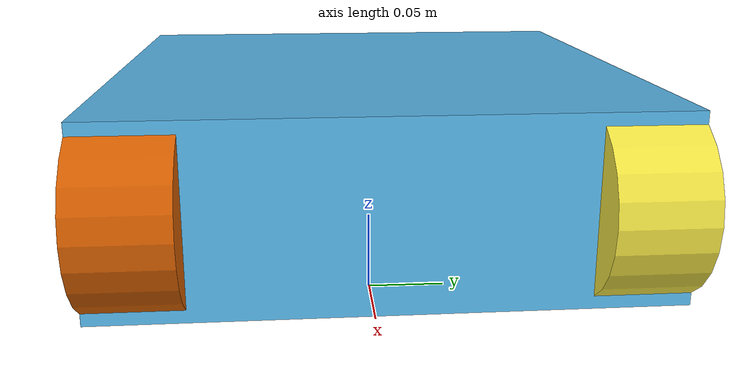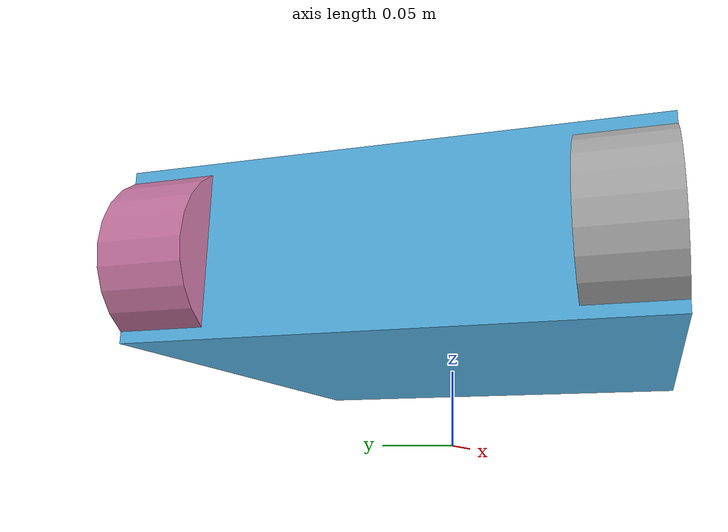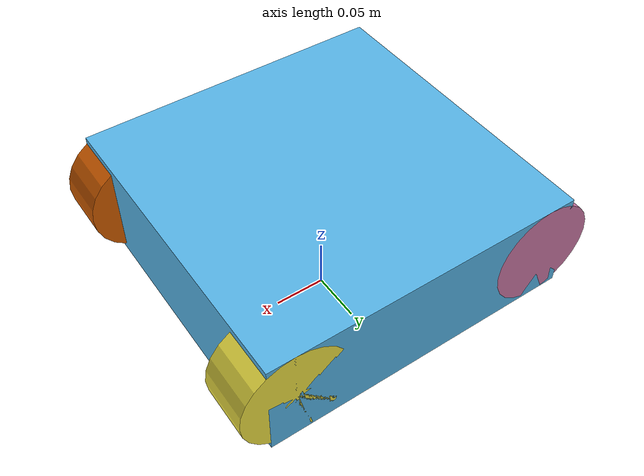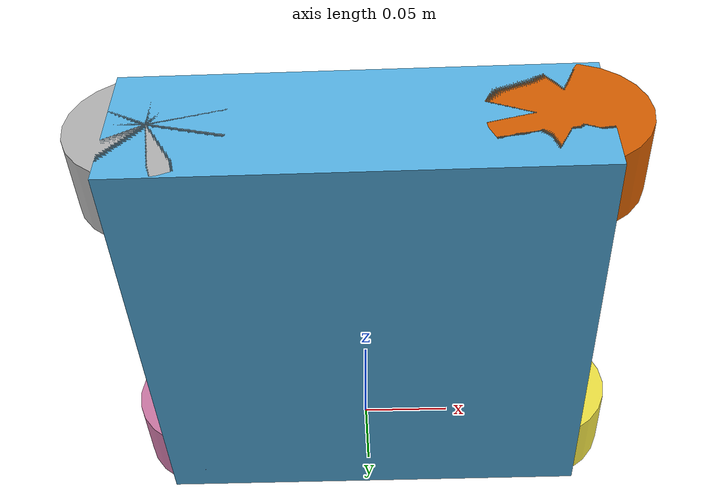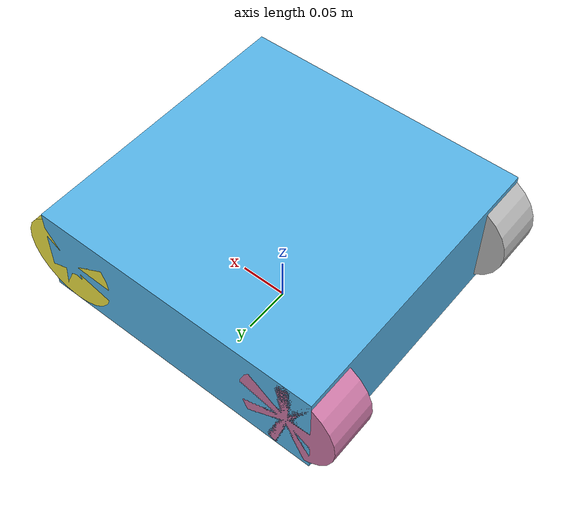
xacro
<?xml version="1.0"?>
<robot xmlns:xacro="http://www.ros.org/wiki/xacro" name="car_robot">

    <!-- ======================= PROPERTIES ======================= -->
    <xacro:property name="chassis_length" value="0.3"/>
    <xacro:property name="chassis_width" value="0.3"/>
    <xacro:property name="chassis_height" value="0.1"/>
    <xacro:property name="wheel_separation" value="0.25"/>
    <xacro:property name="wheel_base" value="0.25"/>
    <xacro:property name="wheel_radius" value="0.05"/>
    <xacro:property name="wheel_diameter" value="${2 * wheel_radius}"/>
    <xacro:property name="PI" value="3.1415926535897931"/>

    <!-- ======================= ROBOT STRUCTURE (LINKS/JOINTS) ======================= -->
    <!-- Base -->
    <link name="base_footprint"/>
    <link name="base_link">
        <visual><geometry><box size="${chassis_length} ${chassis_width} ${chassis_height}"/></geometry></visual>
        <collision><geometry><box size="${chassis_length} ${chassis_width} ${chassis_height}"/></geometry></collision>
        <inertial><mass value="5.0"/><inertia ixx="0.039" ixy="0" ixz="0" iyy="0.039" iyz="0" izz="0.075"/></inertial>
    </link>
    <joint name="base_footprint_joint" type="fixed"><parent link="base_footprint"/><child link="base_link"/><origin xyz="0 0 ${wheel_radius + chassis_height/2}"/></joint>

    <!-- Steering Assembly (Hinge + Wheel) -->
    <!-- THIS IS YOUR ORIGINAL, WORKING MACRO -->
    <xacro:macro name="steering_wheel" params="prefix side side_y_reflect">
        <link name="${prefix}_${side}_steering_hinge_link"/>
        <joint name="${prefix}_${side}_steering_joint" type="revolute"><parent link="base_link"/><child link="${prefix}_${side}_steering_hinge_link"/><origin xyz="${wheel_base/2} ${side_y_reflect*wheel_separation/2} 0"/><axis xyz="0 0 1"/><limit effort="10" velocity="1.0" lower="-0.6" upper="0.6"/></joint>
        <link name="${prefix}_${side}_wheel_link"><visual><origin rpy="${PI/2} 0 0"/><geometry><cylinder radius="${wheel_radius}" length="0.05"/></geometry></visual><collision><origin rpy="${PI/2} 0 0"/><geometry><cylinder radius="${wheel_radius}" length="0.05"/></geometry></collision><inertial><mass value="0.5"/><inertia ixx="0.001" ixy="0" ixz="0" iyy="0.001" iyz="0" izz="0.001"/></inertial></link>
        <joint name="${prefix}_${side}_wheel_joint" type="continuous"><parent link="${prefix}_${side}_steering_hinge_link"/><child link="${prefix}_${side}_wheel_link"/><axis xyz="0 1 0"/></joint>
    </xacro:macro>

    <!-- Rear Wheel Assembly -->
    <!-- THIS IS YOUR ORIGINAL, WORKING MACRO -->
    <xacro:macro name="drive_wheel" params="prefix side side_y_reflect">
        <link name="${prefix}_${side}_wheel_link"><visual><origin rpy="${PI/2} 0 0"/><geometry><cylinder radius="${wheel_radius}" length="0.05"/></geometry></visual><collision><origin rpy="${PI/2} 0 0"/><geometry><cylinder radius="${wheel_radius}" length="0.05"/></geometry></collision><inertial><mass value="0.5"/><inertia ixx="0.001" ixy="0" ixz="0" iyy="0.001" iyz="0" izz="0.001"/></inertial></link>
        <joint name="${prefix}_${side}_wheel_joint" type="continuous"><parent link="base_link"/><child link="${prefix}_${side}_wheel_link"/><origin xyz="-${wheel_base/2} ${side_y_reflect*wheel_separation/2} 0"/><axis xyz="0 1 0"/></joint>
    </xacro:macro>

    <xacro:steering_wheel prefix="front" side="left"  side_y_reflect="1" />
    <xacro:steering_wheel prefix="front" side="right" side_y_reflect="-1"/>
    <xacro:drive_wheel   prefix="rear"  side="left"  side_y_reflect="1" />
    <xacro:drive_wheel   prefix="rear"  side="right" side_y_reflect="-1"/>

    <!-- Lidar -->
    <link name="laser_link"/>
    <joint name="laser_joint" type="fixed"><parent link="base_link"/><child link="laser_link"/><origin xyz="${chassis_length/2} 0 ${chassis_height/2}"/></joint>

    <!-- ======================= GAZEBO PLUGINS AND PROPERTIES ======================= -->
    <!-- THIS IS THE FULLY CORRECTED PLUGIN BLOCK FOR YOUR ORIGINAL MACROS -->
    <gazebo>
        <plugin name="gazebo_ros_ackermann_drive" filename="libgazebo_ros_ackermann_drive.so">
            <ros>
                <remapping>cmd_vel:=/cmd_vel</remapping>
                <remapping>odom:=/odom</remapping>
            </ros>

            <!-- These names now correctly match the names generated by your original macros -->
            <left_steering_joint>front_left_steering_joint</left_steering_joint>
            <right_steering_joint>front_right_steering_joint</right_steering_joint>

            <left_front_wheel_joint>front_left_wheel_joint</left_front_wheel_joint>
            <right_front_wheel_joint>front_right_wheel_joint</right_front_wheel_joint>

            <left_rear_wheel_joint>rear_left_wheel_joint</left_rear_wheel_joint>
            <right_rear_wheel_joint>rear_right_wheel_joint</right_rear_wheel_joint>

            <!-- Kinematics -->
            <wheel_separation>${wheel_separation}</wheel_separation>
            <wheel_diameter>${wheel_diameter}</wheel_diameter>
            <wheel_base>${wheel_base}</wheel_base>

            <!-- Limits -->
            <max_steer>0.6</max_steer>
            <max_speed>5.0</max_speed>

            <!-- Output -->
            <publish_odom>true</publish_odom>
            <publish_odom_tf>true</publish_odom_tf>
            <odometry_frame>odom</odometry_frame>
            <robot_base_frame>base_footprint</robot_base_frame>
        </plugin>
    </gazebo>

    <gazebo reference="laser_link">
        <sensor name="laser" type="ray">
            <update_rate>10</update_rate>
            <visualize>false</visualize>
            <ray>
                <scan><horizontal><samples>360</samples><min_angle>-${PI}</min_angle><max_angle>${PI}</max_angle></horizontal></scan>
                <range><min>0.05</min><max>2.0</max></range>
            </ray>
            <plugin name="laser_controller" filename="libgazebo_ros_ray_sensor.so">
                <ros><namespace>/laser_controller</namespace><remapping>~/out:=scan</remapping></ros>
                <output_type>sensor_msgs/LaserScan</output_type>
                <frame_name>laser_link</frame_name>
            </plugin>
        </sensor>
    </gazebo>
</robot>
